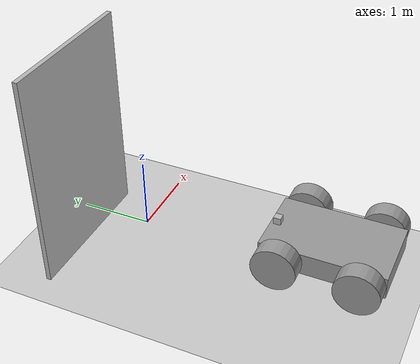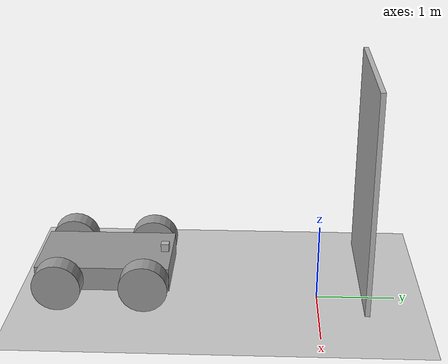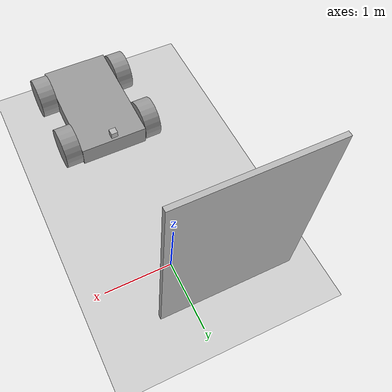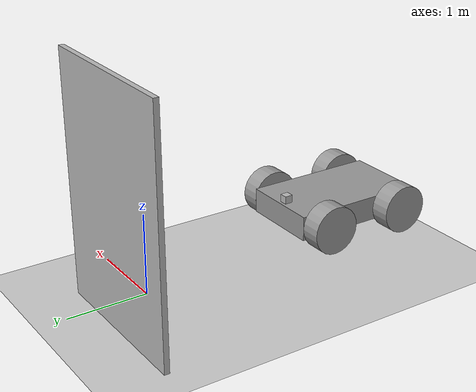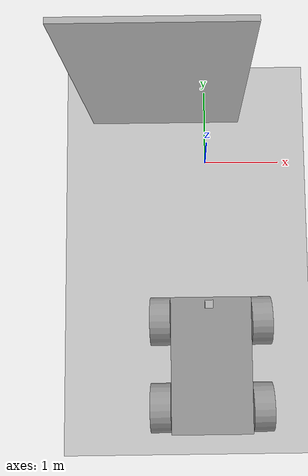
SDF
<sdf version="1.7">
 <world name="default">
  <light name="sun" type="directional">
   <pose>0 0 10 0 -0 0</pose>
   <diffuse>0.8 0.8 0.8 1</diffuse>
   <specular>0.2 0.2 0.2 1</specular>
   <attenuation>
    <range>1000</range>
    <constant>0.9</constant>
    <linear>0.01</linear>
    <quadratic>0.001</quadratic>
   </attenuation>
   <direction>-0.5 0.1 -0.9</direction>
   <spot><inner_angle>0</inner_angle><outer_angle>0</outer_angle><falloff>0</falloff></spot>
  </light>
  <model name="ground_plane">
   <static>1</static>
   <link name="link">
    <collision name="collision">
     <geometry><plane><normal>0 0 1</normal><size>100 100</size></plane></geometry>
     <surface>
      <contact><collide_bitmask>65535</collide_bitmask></contact>
      <friction><ode><mu>100</mu><mu2>50</mu2></ode></friction>
     </surface>
    </collision>
    <visual name="visual">
     <cast_shadows>0</cast_shadows>
     <geometry><plane><normal>0 0 1</normal><size>100 100</size></plane></geometry>
     <material>
      <script><uri>file://media/materials/scripts/gazebo.material</uri><name>Gazebo/Grey</name></script>
     </material>
    </visual>
   </link>
  </model>
  <gravity>0 0 -9.8</gravity>
  <magnetic_field>6e-06 2.3e-05 -4.2e-05</magnetic_field>
  <atmosphere type="adiabatic"/>
  <physics type="ode">
   <max_step_size>0.001</max_step_size>
   <real_time_factor>1</real_time_factor>
   <real_time_update_rate>1000</real_time_update_rate>
  </physics>
  <scene><ambient>0.4 0.4 0.4 1</ambient><background>0.7 0.7 0.7 1</background><shadows>1</shadows></scene>
  <spherical_coordinates>
   <surface_model>EARTH_WGS84</surface_model>
   <latitude_deg>0</latitude_deg>
   <longitude_deg>0</longitude_deg>
   <elevation>0</elevation>
   <heading_deg>0</heading_deg>
  </spherical_coordinates>
  <model name="binsOnly">
   <link name="link_0">
    <inertial>
     <mass>1</mass>
     <inertia>
      <ixx>0.166667</ixx>
      <ixy>0</ixy>
      <ixz>0</ixz>
      <iyy>0.166667</iyy>
      <iyz>0</iyz>
      <izz>0.166667</izz>
     </inertia>
    </inertial>
    <visual name="visual">
     <geometry><mesh><uri>/home/kenan/testFlight/binsOnly.dae</uri><scale>1 1 1</scale></mesh></geometry>
    </visual>
    <collision name="collision">
     <geometry><mesh><uri>/home/kenan/testFlight/binsOnly.dae</uri><scale>1 1 1</scale></mesh></geometry>
     <surface>
      <friction>
       <ode><mu>1</mu><mu2>1</mu2><fdir1>0 0 0</fdir1><slip1>0</slip1><slip2>0</slip2></ode>
       <torsional>
        <coefficient>1</coefficient>
        <patch_radius>0</patch_radius>
        <surface_radius>0</surface_radius>
        <use_patch_radius>1</use_patch_radius>
        <ode><slip>0</slip></ode>
       </torsional>
      </friction>
      <bounce><restitution_coefficient>0</restitution_coefficient><threshold>1e+06</threshold></bounce>
      <contact>
       <collide_without_contact>0</collide_without_contact>
       <collide_without_contact_bitmask>1</collide_without_contact_bitmask>
       <collide_bitmask>1</collide_bitmask>
       <ode>
        <soft_cfm>0</soft_cfm>
        <soft_erp>0.2</soft_erp>
        <kp>1e+13</kp>
        <kd>1</kd>
        <max_vel>0.01</max_vel>
        <min_depth>0</min_depth>
       </ode>
       <bullet>
        <split_impulse>1</split_impulse>
        <split_impulse_penetration_threshold>-0.01</split_impulse_penetration_threshold>
        <soft_cfm>0</soft_cfm>
        <soft_erp>0.2</soft_erp>
        <kp>1e+13</kp>
        <kd>1</kd>
       </bullet>
      </contact>
     </surface>
    </collision>
   </link>
   <static>0</static>
   <pose>-0.458323 0.612166 0.012249 -2e-05 -7.5e-05 -2.3e-05</pose>
  </model>
  <model name="carWithCam2">
   <link name="link_2">
    <inertial>
     <mass>0.506765</mass>
     <inertia>
      <ixx>0.12085</ixx>
      <ixy>0</ixy>
      <ixz>0</ixz>
      <iyy>0.0461514</iyy>
      <iyz>0</iyz>
      <izz>0.159159</izz>
     </inertia>
    </inertial>
    <pose>-0.068798 -0.11996 0.5 0 -0 0</pose>
    <visual name="visual">
     <geometry><box><size>1 1.66398 0.304712</size></box></geometry>
     <material>
      <lighting>1</lighting>
      <script><uri>file://media/materials/scripts/gazebo.material</uri><name>Gazebo/Grey</name></script>
      <shader type="pixel"><normal_map>__default__</normal_map></shader>
      <ambient>0.3 0.3 0.3 1</ambient>
      <diffuse>0.7 0.7 0.7 1</diffuse>
      <specular>0.01 0.01 0.01 1</specular>
      <emissive>0 0 0 1</emissive>
     </material>
    </visual>
    <collision name="collision">
     <geometry><box><size>1 1.66398 0.304712</size></box></geometry>
     <surface>
      <friction>
       <ode><mu>1</mu><mu2>1</mu2><fdir1>0 0 0</fdir1><slip1>0</slip1><slip2>0</slip2></ode>
       <torsional>
        <coefficient>1</coefficient>
        <patch_radius>0</patch_radius>
        <surface_radius>0</surface_radius>
        <use_patch_radius>1</use_patch_radius>
        <ode><slip>0</slip></ode>
       </torsional>
      </friction>
      <bounce><restitution_coefficient>0</restitution_coefficient><threshold>1e+06</threshold></bounce>
      <contact>
       <collide_without_contact>0</collide_without_contact>
       <collide_without_contact_bitmask>1</collide_without_contact_bitmask>
       <collide_bitmask>1</collide_bitmask>
       <ode>
        <soft_cfm>0</soft_cfm>
        <soft_erp>0.2</soft_erp>
        <kp>1e+13</kp>
        <kd>1</kd>
        <max_vel>0.01</max_vel>
        <min_depth>0</min_depth>
       </ode>
       <bullet>
        <split_impulse>1</split_impulse>
        <split_impulse_penetration_threshold>-0.01</split_impulse_penetration_threshold>
        <soft_cfm>0</soft_cfm>
        <soft_erp>0.2</soft_erp>
        <kp>1e+13</kp>
        <kd>1</kd>
       </bullet>
      </contact>
     </surface>
    </collision>
   </link>
   <link name="link_3">
    <inertial>
     <mass>1</mass>
     <inertia><ixx>0.145833</ixx><ixy>0</ixy><ixz>0</ixz><iyy>0.145833</iyy><iyz>0</iyz><izz>0.125</izz></inertia>
    </inertial>
    <pose>-0.69709 0.41618 0.5 1.57079 -9.6e-05 -1.55974</pose>
    <visual name="visual">
     <geometry><cylinder><radius>0.3</radius><length>0.25</length></cylinder></geometry>
     <material>
      <lighting>1</lighting>
      <script><uri>file://media/materials/scripts/gazebo.material</uri><name>Gazebo/Grey</name></script>
      <shader type="pixel"><normal_map>__default__</normal_map></shader>
      <ambient>0.3 0.3 0.3 1</ambient>
      <diffuse>0.7 0.7 0.7 1</diffuse>
      <specular>0.01 0.01 0.01 1</specular>
      <emissive>0 0 0 1</emissive>
     </material>
    </visual>
    <collision name="collision">
     <geometry><cylinder><radius>0.3</radius><length>0.25</length></cylinder></geometry>
     <surface>
      <friction>
       <ode><mu>1</mu><mu2>1</mu2><fdir1>0 0 0</fdir1><slip1>0</slip1><slip2>0</slip2></ode>
       <torsional>
        <coefficient>1</coefficient>
        <patch_radius>0</patch_radius>
        <surface_radius>0</surface_radius>
        <use_patch_radius>1</use_patch_radius>
        <ode><slip>0</slip></ode>
       </torsional>
      </friction>
      <bounce><restitution_coefficient>0</restitution_coefficient><threshold>1e+06</threshold></bounce>
      <contact>
       <collide_without_contact>0</collide_without_contact>
       <collide_without_contact_bitmask>1</collide_without_contact_bitmask>
       <collide_bitmask>1</collide_bitmask>
       <ode>
        <soft_cfm>0</soft_cfm>
        <soft_erp>0.2</soft_erp>
        <kp>1e+13</kp>
        <kd>1</kd>
        <max_vel>0.01</max_vel>
        <min_depth>0</min_depth>
       </ode>
       <bullet>
        <split_impulse>1</split_impulse>
        <split_impulse_penetration_threshold>-0.01</split_impulse_penetration_threshold>
        <soft_cfm>0</soft_cfm>
        <soft_erp>0.2</soft_erp>
        <kp>1e+13</kp>
        <kd>1</kd>
       </bullet>
      </contact>
     </surface>
    </collision>
   </link>
   <link name="link_3_clone">
    <inertial>
     <mass>1</mass>
     <inertia><ixx>0.145833</ixx><ixy>0</ixy><ixz>0</ixz><iyy>0.145833</iyy><iyz>0</iyz><izz>0.125</izz></inertia>
    </inertial>
    <pose>0.559529 0.41618 0.5 1.57079 -9.6e-05 -1.55974</pose>
    <visual name="visual">
     <geometry><cylinder><radius>0.3</radius><length>0.25</length></cylinder></geometry>
     <material>
      <lighting>1</lighting>
      <script><uri>file://media/materials/scripts/gazebo.material</uri><name>Gazebo/Grey</name></script>
      <shader type="pixel"><normal_map>__default__</normal_map></shader>
      <ambient>0.3 0.3 0.3 1</ambient>
      <diffuse>0.7 0.7 0.7 1</diffuse>
      <specular>0.01 0.01 0.01 1</specular>
      <emissive>0 0 0 1</emissive>
     </material>
    </visual>
    <collision name="collision">
     <geometry><cylinder><radius>0.3</radius><length>0.25</length></cylinder></geometry>
     <surface>
      <friction>
       <ode><mu>1</mu><mu2>1</mu2><fdir1>0 0 0</fdir1><slip1>0</slip1><slip2>0</slip2></ode>
       <torsional>
        <coefficient>1</coefficient>
        <patch_radius>0</patch_radius>
        <surface_radius>0</surface_radius>
        <use_patch_radius>1</use_patch_radius>
        <ode><slip>0</slip></ode>
       </torsional>
      </friction>
      <bounce><restitution_coefficient>0</restitution_coefficient><threshold>1e+06</threshold></bounce>
      <contact>
       <collide_without_contact>0</collide_without_contact>
       <collide_without_contact_bitmask>1</collide_without_contact_bitmask>
       <collide_bitmask>1</collide_bitmask>
       <ode>
        <soft_cfm>0</soft_cfm>
        <soft_erp>0.2</soft_erp>
        <kp>1e+13</kp>
        <kd>1</kd>
        <max_vel>0.01</max_vel>
        <min_depth>0</min_depth>
       </ode>
       <bullet>
        <split_impulse>1</split_impulse>
        <split_impulse_penetration_threshold>-0.01</split_impulse_penetration_threshold>
        <soft_cfm>0</soft_cfm>
        <soft_erp>0.2</soft_erp>
        <kp>1e+13</kp>
        <kd>1</kd>
       </bullet>
      </contact>
     </surface>
    </collision>
   </link>
   <link name="link_3_clone_clone">
    <inertial>
     <mass>1</mass>
     <inertia><ixx>0.145833</ixx><ixy>0</ixy><ixz>0</ixz><iyy>0.145833</iyy><iyz>0</iyz><izz>0.125</izz></inertia>
    </inertial>
    <pose>0.559529 -0.64502 0.5 1.57079 -9.6e-05 -1.55974</pose>
    <visual name="visual">
     <geometry><cylinder><radius>0.3</radius><length>0.25</length></cylinder></geometry>
     <material>
      <lighting>1</lighting>
      <script><uri>file://media/materials/scripts/gazebo.material</uri><name>Gazebo/Grey</name></script>
      <shader type="pixel"><normal_map>__default__</normal_map></shader>
      <ambient>0.3 0.3 0.3 1</ambient>
      <diffuse>0.7 0.7 0.7 1</diffuse>
      <specular>0.01 0.01 0.01 1</specular>
      <emissive>0 0 0 1</emissive>
     </material>
    </visual>
    <collision name="collision">
     <geometry><cylinder><radius>0.3</radius><length>0.25</length></cylinder></geometry>
     <surface>
      <friction>
       <ode><mu>1</mu><mu2>1</mu2><fdir1>0 0 0</fdir1><slip1>0</slip1><slip2>0</slip2></ode>
       <torsional>
        <coefficient>1</coefficient>
        <patch_radius>0</patch_radius>
        <surface_radius>0</surface_radius>
        <use_patch_radius>1</use_patch_radius>
        <ode><slip>0</slip></ode>
       </torsional>
      </friction>
      <bounce><restitution_coefficient>0</restitution_coefficient><threshold>1e+06</threshold></bounce>
      <contact>
       <collide_without_contact>0</collide_without_contact>
       <collide_without_contact_bitmask>1</collide_without_contact_bitmask>
       <collide_bitmask>1</collide_bitmask>
       <ode>
        <soft_cfm>0</soft_cfm>
        <soft_erp>0.2</soft_erp>
        <kp>1e+13</kp>
        <kd>1</kd>
        <max_vel>0.01</max_vel>
        <min_depth>0</min_depth>
       </ode>
       <bullet>
        <split_impulse>1</split_impulse>
        <split_impulse_penetration_threshold>-0.01</split_impulse_penetration_threshold>
        <soft_cfm>0</soft_cfm>
        <soft_erp>0.2</soft_erp>
        <kp>1e+13</kp>
        <kd>1</kd>
       </bullet>
      </contact>
     </surface>
    </collision>
   </link>
   <link name="link_3_clone_clone_0">
    <inertial>
     <mass>1</mass>
     <inertia><ixx>0.145833</ixx><ixy>0</ixy><ixz>0</ixz><iyy>0.145833</iyy><iyz>0</iyz><izz>0.125</izz></inertia>
    </inertial>
    <pose>-0.697092 -0.64502 0.5 1.57079 -9.6e-05 -1.55974</pose>
    <visual name="visual">
     <geometry><cylinder><radius>0.3</radius><length>0.25</length></cylinder></geometry>
     <material>
      <lighting>1</lighting>
      <script><uri>file://media/materials/scripts/gazebo.material</uri><name>Gazebo/Grey</name></script>
      <shader type="pixel"><normal_map>__default__</normal_map></shader>
      <ambient>0.3 0.3 0.3 1</ambient>
      <diffuse>0.7 0.7 0.7 1</diffuse>
      <specular>0.01 0.01 0.01 1</specular>
      <emissive>0 0 0 1</emissive>
     </material>
    </visual>
    <collision name="collision">
     <geometry><cylinder><radius>0.3</radius><length>0.25</length></cylinder></geometry>
     <surface>
      <friction>
       <ode><mu>1</mu><mu2>1</mu2><fdir1>0 0 0</fdir1><slip1>0</slip1><slip2>0</slip2></ode>
       <torsional>
        <coefficient>1</coefficient>
        <patch_radius>0</patch_radius>
        <surface_radius>0</surface_radius>
        <use_patch_radius>1</use_patch_radius>
        <ode><slip>0</slip></ode>
       </torsional>
      </friction>
      <bounce><restitution_coefficient>0</restitution_coefficient><threshold>1e+06</threshold></bounce>
      <contact>
       <collide_without_contact>0</collide_without_contact>
       <collide_without_contact_bitmask>1</collide_without_contact_bitmask>
       <collide_bitmask>1</collide_bitmask>
       <ode>
        <soft_cfm>0</soft_cfm>
        <soft_erp>0.2</soft_erp>
        <kp>1e+13</kp>
        <kd>1</kd>
        <max_vel>0.01</max_vel>
        <min_depth>0</min_depth>
       </ode>
       <bullet>
        <split_impulse>1</split_impulse>
        <split_impulse_penetration_threshold>-0.01</split_impulse_penetration_threshold>
        <soft_cfm>0</soft_cfm>
        <soft_erp>0.2</soft_erp>
        <kp>1e+13</kp>
        <kd>1</kd>
       </bullet>
      </contact>
     </surface>
    </collision>
   </link>
   <model name="camera">
    <pose>-0.092408 0.622123 0.69875 0 -0 1.57994</pose>
    <link name="link">
     <inertial>
      <mass>0.1</mass>
      <inertia>
       <ixx>0.000166667</ixx>
       <iyy>0.000166667</iyy>
       <izz>0.000166667</izz>
       <ixy>0</ixy>
       <ixz>0</ixz>
       <iyz>0</iyz>
      </inertia>
     </inertial>
     <collision name="collision"><geometry><box><size>0.1 0.1 0.1</size></box></geometry></collision>
     <visual name="visual"><geometry><box><size>0.1 0.1 0.1</size></box></geometry></visual>
     <sensor name="camera" type="camera">
      <camera>
       <horizontal_fov>1.047</horizontal_fov>
       <image><width>640</width><height>480</height></image>
       <clip><near>0.1</near><far>100</far></clip>
      </camera>
      <plugin name="camera_controller" filename="libgazebo_ros_camera.so">
       <alwaysOn>true</alwaysOn>
       <updateRate>0.0</updateRate>
       <cameraName>camera</cameraName>
       <imageTopicName>image_raw</imageTopicName>
       <cameraInfoTopicName>camera_info</cameraInfoTopicName>
       <frameName>camera_link</frameName>
       <hackBaseline>0.07</hackBaseline>
       <distortionK1>0.0</distortionK1>
       <distortionK2>0.0</distortionK2>
       <distortionK3>0.0</distortionK3>
       <distortionT1>0.0</distortionT1>
       <distortionT2>0.0</distortionT2>
      </plugin>
      <always_on>1</always_on>
      <update_rate>30</update_rate>
      <visualize>1</visualize>
     </sensor>
    </link>
   </model>
   <joint name="link_2_JOINT_0" type="fixed">
    <parent>link_2</parent>
    <child>camera::link</child>
    <physics>
     <ode><limit><cfm>0</cfm><erp>0.2</erp></limit><suspension><cfm>0</cfm><erp>0.2</erp></suspension></ode>
    </physics>
   </joint>
   <joint name="link_2_JOINT_1" type="revolute">
    <parent>link_2</parent>
    <child>link_3</child>
    <axis>
     <xyz>0 0 1</xyz>
     <limit>
      <lower>-1.79769e+308</lower>
      <upper>1.79769e+308</upper>
      <effort>-1</effort>
      <velocity>-1</velocity>
     </limit>
     <dynamics>
      <spring_reference>0</spring_reference>
      <spring_stiffness>0</spring_stiffness>
      <damping>0</damping>
      <friction>0</friction>
     </dynamics>
    </axis>
    <physics>
     <ode><limit><cfm>0</cfm><erp>0.2</erp></limit><suspension><cfm>0</cfm><erp>0.2</erp></suspension></ode>
    </physics>
   </joint>
   <joint name="link_2_JOINT_2" type="revolute">
    <parent>link_2</parent>
    <child>link_3_clone_clone_0</child>
    <axis>
     <xyz>0 0 1</xyz>
     <limit>
      <lower>-1.79769e+308</lower>
      <upper>1.79769e+308</upper>
      <effort>-1</effort>
      <velocity>-1</velocity>
     </limit>
     <dynamics>
      <spring_reference>0</spring_reference>
      <spring_stiffness>0</spring_stiffness>
      <damping>0</damping>
      <friction>0</friction>
     </dynamics>
    </axis>
    <physics>
     <ode><limit><cfm>0</cfm><erp>0.2</erp></limit><suspension><cfm>0</cfm><erp>0.2</erp></suspension></ode>
    </physics>
   </joint>
   <joint name="link_2_JOINT_3" type="revolute">
    <parent>link_2</parent>
    <child>link_3_clone_clone</child>
    <axis>
     <xyz>0 0 1</xyz>
     <limit>
      <lower>-1.79769e+308</lower>
      <upper>1.79769e+308</upper>
      <effort>-1</effort>
      <velocity>-1</velocity>
     </limit>
     <dynamics>
      <spring_reference>0</spring_reference>
      <spring_stiffness>0</spring_stiffness>
      <damping>0</damping>
      <friction>0</friction>
     </dynamics>
    </axis>
    <physics>
     <ode><limit><cfm>0</cfm><erp>0.2</erp></limit><suspension><cfm>0</cfm><erp>0.2</erp></suspension></ode>
    </physics>
   </joint>
   <joint name="link_2_JOINT_4" type="revolute">
    <parent>link_2</parent>
    <child>link_3_clone</child>
    <axis>
     <xyz>0 0 1</xyz>
     <limit>
      <lower>-1.79769e+308</lower>
      <upper>1.79769e+308</upper>
      <effort>-1</effort>
      <velocity>-1</velocity>
     </limit>
     <dynamics>
      <spring_reference>0</spring_reference>
      <spring_stiffness>0</spring_stiffness>
      <damping>0</damping>
      <friction>0</friction>
     </dynamics>
    </axis>
    <physics>
     <ode><limit><cfm>0</cfm><erp>0.2</erp></limit><suspension><cfm>0</cfm><erp>0.2</erp></suspension></ode>
    </physics>
   </joint>
   <static>0</static>
   <pose>0.098255 -2.57842 0 0 -0 0</pose>
   <plugin name="diff_drive" filename="libgazebo_ros_diff_drive.so">
    <ros>
     <namespace>/kinangreat</namespace>
     <remapping>cmd_vel:=cmd_demo</remapping>
     <remapping>odom:=odom_demo</remapping>
    </ros>
    <left_joint>link_2_JOINT_1</left_joint>
    <right_joint>link_2_JOINT_2</right_joint>
    <wheel_separation>1.25</wheel_separation>
    <wheel_diameter>0.6</wheel_diameter>
    <max_wheel_torque>20</max_wheel_torque>
    <max_wheel_acceleration>1.0</max_wheel_acceleration>
    <publish_odom>true</publish_odom>
    <publish_odom_tf>true</publish_odom_tf>
    <publish_wheel_tf>true</publish_wheel_tf>
    <odometry_frame>odom_demo</odometry_frame>
    <robot_base_frame>chassis</robot_base_frame>
   </plugin>
   <plugin name="diff_drive" filename="libgazebo_ros_diff_drive.so">
    <ros>
     <namespace>/kinanside</namespace>
     <remapping>cmd_vel:=cmd_demo</remapping>
     <remapping>odom:=odom_demo</remapping>
    </ros>
    <left_joint>link_2_JOINT_3</left_joint>
    <right_joint>link_2_JOINT_4</right_joint>
    <wheel_separation>1.25</wheel_separation>
    <wheel_diameter>0.6</wheel_diameter>
    <max_wheel_torque>20</max_wheel_torque>
    <max_wheel_acceleration>1.0</max_wheel_acceleration>
    <publish_odom>true</publish_odom>
    <publish_odom_tf>true</publish_odom_tf>
    <publish_wheel_tf>true</publish_wheel_tf>
    <odometry_frame>odom_demo</odometry_frame>
    <robot_base_frame>chassis</robot_base_frame>
   </plugin>
   <plugin name="diff_drive" filename="libgazebo_ros_diff_drive.so">
    <ros>
     <namespace>/kinanside</namespace>
     <remapping>cmd_vel:=cmd_demo</remapping>
     <remapping>odom:=odom_demo</remapping>
    </ros>
    <left_joint>link_2_JOINT_3</left_joint>
    <right_joint>link_2_JOINT_4</right_joint>
    <wheel_separation>1.25</wheel_separation>
    <wheel_diameter>0.6</wheel_diameter>
    <max_wheel_torque>20</max_wheel_torque>
    <max_wheel_acceleration>1.0</max_wheel_acceleration>
    <publish_odom>true</publish_odom>
    <publish_odom_tf>true</publish_odom_tf>
    <publish_wheel_tf>true</publish_wheel_tf>
    <odometry_frame>odom_demo</odometry_frame>
    <robot_base_frame>chassis</robot_base_frame>
   </plugin>
  </model>
 </world>
</sdf>
